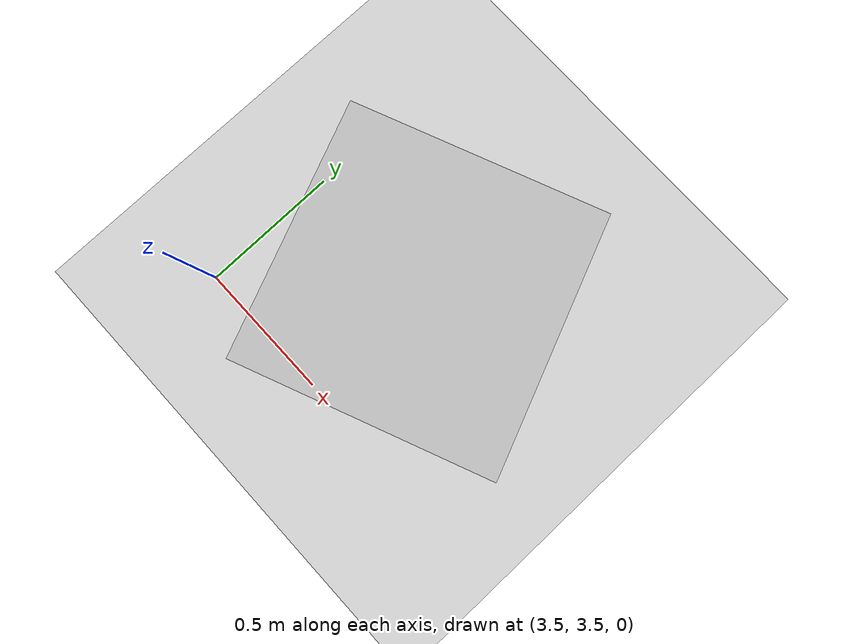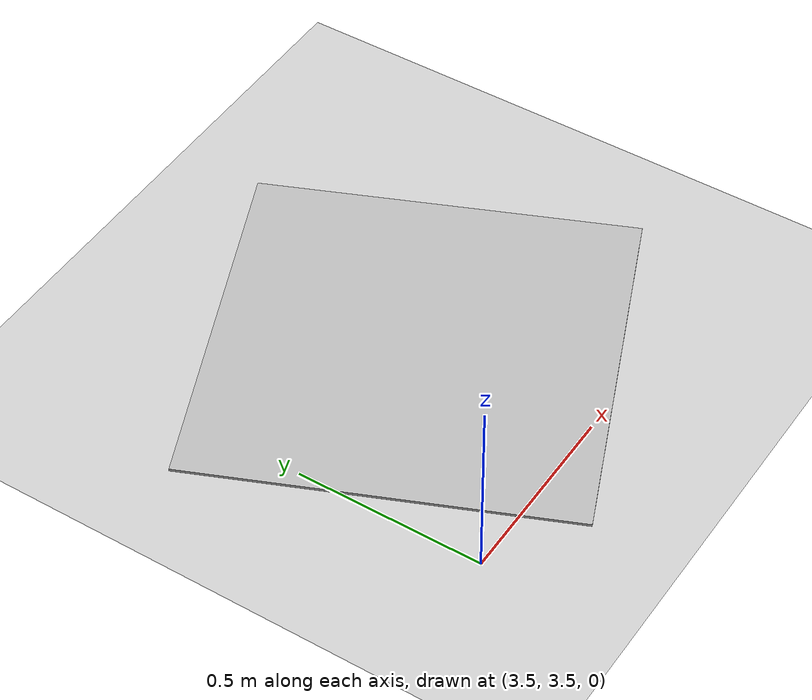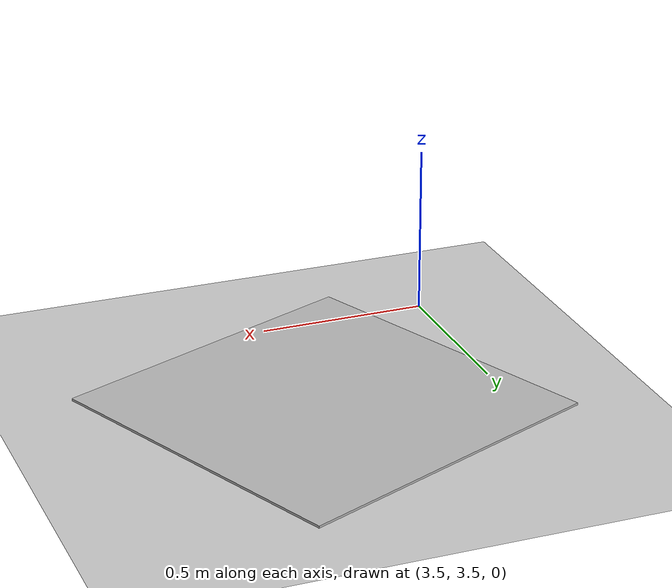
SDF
<?xml version="1.0" ?>
<sdf version="1.4">
  <world name="default">
    <include>
      <uri>model://ground_plane</uri>
    </include>
    <include>
      <uri>model://sun</uri>
    </include>
    <include>
      <uri>model://apriltag_landing_pad</uri>
      <pose>4 4 0 0 0 .4</pose>
    </include>

    <physics name='default_physics' default='0' type='ode'>
      <gravity>0 0 -9.8066</gravity>
      <ode>
        <solver>
          <type>quick</type>
          <iters>10</iters>
          <sor>1.3</sor>
          <use_dynamic_moi_rescaling>0</use_dynamic_moi_rescaling>
        </solver>
        <constraints>
          <cfm>0</cfm>
          <erp>0.2</erp>
          <contact_max_correcting_vel>100</contact_max_correcting_vel>
          <contact_surface_layer>0.001</contact_surface_layer>
        </constraints>
      </ode>
      <max_step_size>0.004</max_step_size>
      <real_time_factor>1</real_time_factor>
      <real_time_update_rate>250</real_time_update_rate>
      <magnetic_field>6.0e-6 2.3e-5 -4.2e-5</magnetic_field>
    </physics>

  </world>
</sdf>

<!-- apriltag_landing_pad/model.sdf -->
<sdf version='1.6'>
  <model name='apriltag_landing_pad'>
    <link name='main'>
    <pose frame=''>0 0 0 0 0 0</pose>
      <visual name='main_Visual'>
        <geometry>
          <box>
            <size>1.0 1.0 0.01</size>
          </box>
        </geometry>
        <material>
          <script>
            <uri>model://apriltag_landing_pad/materials/scripts</uri>
            <uri>model://apriltag_landing_pad/materials/textures</uri>
            <name>landing_pad_material</name>
          </script>
        </material>
      </visual>
     </link>
    <static>1</static>
  </model>
</sdf>
